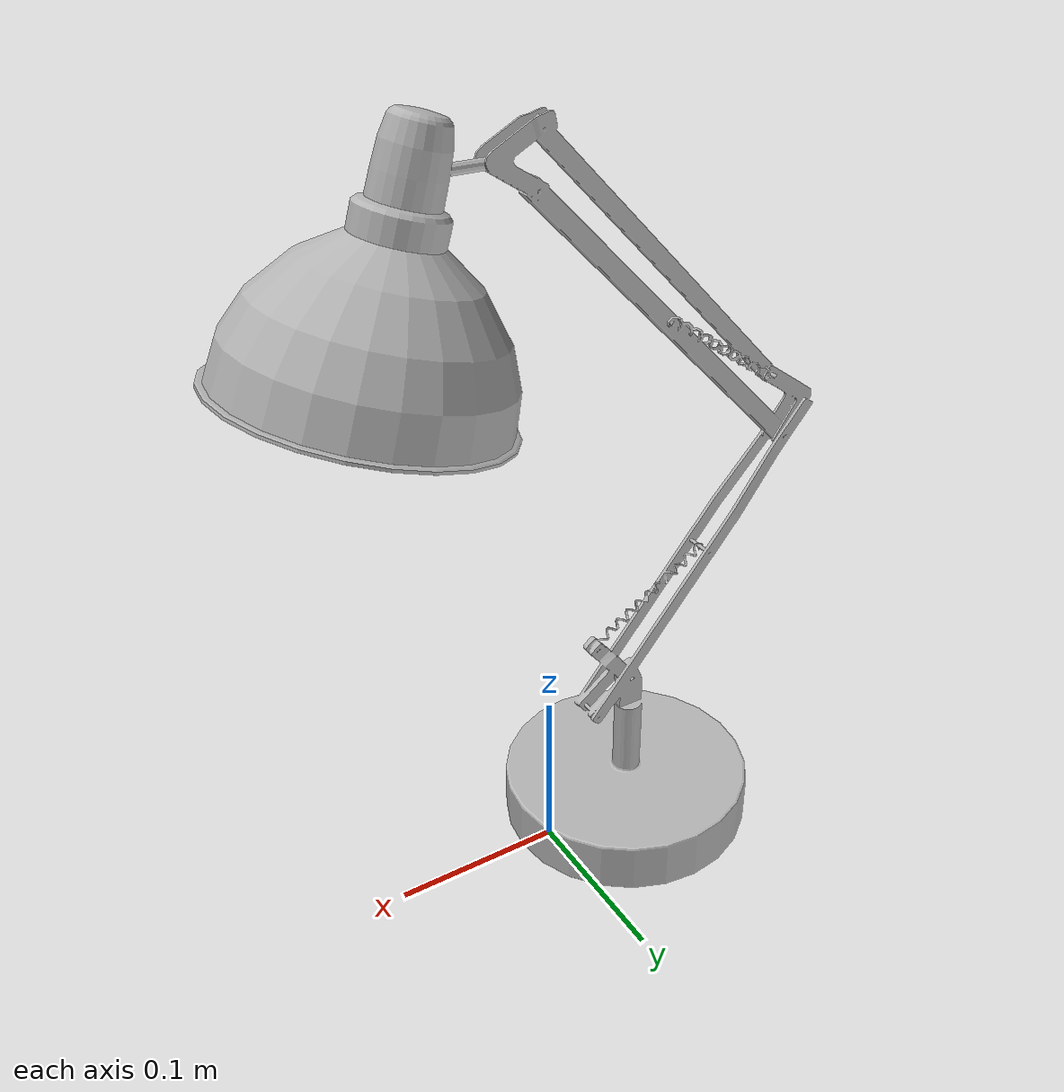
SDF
<?xml version='1.0'?>
<sdf version='1.4'>
  <model name='419'>
    <pose>0 0 0 0 0 0</pose>
    <static>true</static>
    <link name='link'>
      <collision name='collision'>
        <pose>0 0 0 0 0 0</pose>
        <geometry>
          <box>
            <size>0.348578 0.15 2</size>
          </box>
        </geometry>
      </collision>
      <visual name='visual'>
        <pose>0 0 0 0 0 0</pose>
        <geometry>
          <mesh><uri>model://419/419.dae</uri></mesh>
        </geometry>
      </visual>
    </link>
  </model>
</sdf>
